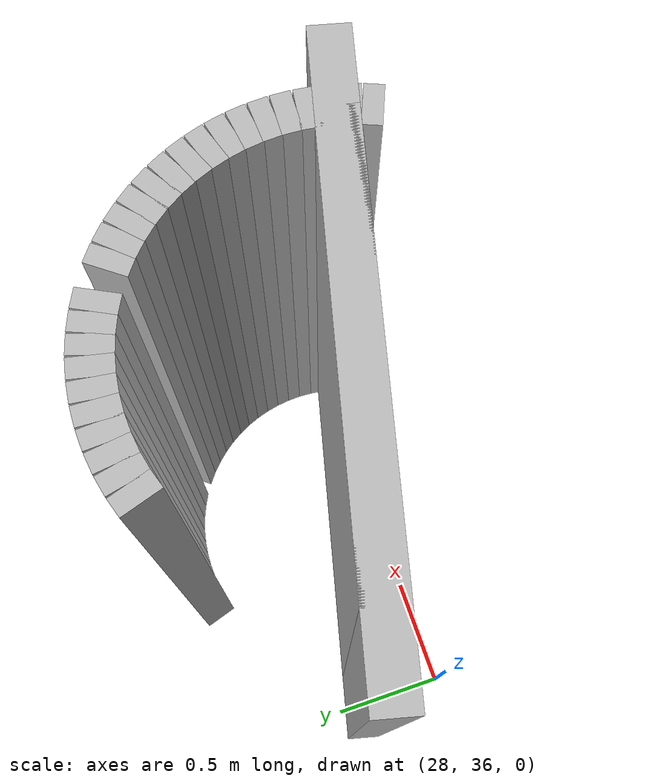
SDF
<sdf version="1.6">
 <model name="sps_0108">
  <static>1</static>
  <allow_auto_disable>0</allow_auto_disable>
  <link name="Wall17">
   <collision name="collision"><geometry><box><size>2.20059 0.15 2.5</size></box></geometry></collision>
   <visual name="visual">
    <geometry><box><size>2.20059 0.15 2.5</size></box></geometry>
    <transparency>0.0</transparency>
   </visual>
   <pose>28.9172 36.1646 1.25 0 0 -0.247824</pose>
  </link>
  <link name="Wall742">
   <collision name="collision"><geometry><box><size>1.59923 0.15 2.5</size></box></geometry></collision>
   <visual name="visual">
    <geometry><box><size>1.59923 0.15 2.5</size></box></geometry>
    <transparency>0.0</transparency>
   </visual>
   <pose>28.9172 36.1647 1.25 0 0 -0.248172</pose>
  </link>
  <link name="Wall3823">
   <collision name="collision"><geometry><box><size>0.0697909 0.15 2.5</size></box></geometry></collision>
   <visual name="visual">
    <geometry><box><size>0.0697909 0.15 2.5</size></box></geometry>
    <transparency>0.0</transparency>
   </visual>
   <pose>29.4032 36.7989 1.25 0 0 -0.653296</pose>
  </link>
  <link name="Wall3824">
   <collision name="collision"><geometry><box><size>0.0697644 0.15 2.5</size></box></geometry></collision>
   <visual name="visual">
    <geometry><box><size>0.0697644 0.15 2.5</size></box></geometry>
    <transparency>0.0</transparency>
   </visual>
   <pose>29.4566 36.7541 1.25 0 0 -0.7427</pose>
  </link>
  <link name="Wall3825">
   <collision name="collision"><geometry><box><size>0.0698994 0.15 2.5</size></box></geometry></collision>
   <visual name="visual">
    <geometry><box><size>0.0698994 0.15 2.5</size></box></geometry>
    <transparency>0.0</transparency>
   </visual>
   <pose>29.5059 36.7047 1.25 0 0 -0.829868</pose>
  </link>
  <link name="Wall3826">
   <collision name="collision"><geometry><box><size>0.0696456 0.15 2.5</size></box></geometry></collision>
   <visual name="visual">
    <geometry><box><size>0.0696456 0.15 2.5</size></box></geometry>
    <transparency>0.0</transparency>
   </visual>
   <pose>29.5507 36.6513 1.25 0 0 -0.915902</pose>
  </link>
  <link name="Wall3827">
   <collision name="collision"><geometry><box><size>0.0699275 0.15 2.5</size></box></geometry></collision>
   <visual name="visual">
    <geometry><box><size>0.0699275 0.15 2.5</size></box></geometry>
    <transparency>0.0</transparency>
   </visual>
   <pose>29.5907 36.5942 1.25 0 0 -1.00313</pose>
  </link>
  <link name="Wall3828">
   <collision name="collision"><geometry><box><size>0.0697232 0.15 2.5</size></box></geometry></collision>
   <visual name="visual">
    <geometry><box><size>0.0697232 0.15 2.5</size></box></geometry>
    <transparency>0.0</transparency>
   </visual>
   <pose>29.6256 36.5338 1.25 0 0 -1.09031</pose>
  </link>
  <link name="Wall3829">
   <collision name="collision"><geometry><box><size>0.0698203 0.15 2.5</size></box></geometry></collision>
   <visual name="visual">
    <geometry><box><size>0.0698203 0.15 2.5</size></box></geometry>
    <transparency>0.0</transparency>
   </visual>
   <pose>29.655 36.4706 1.25 0 0 -1.18071</pose>
  </link>
  <link name="Wall3830">
   <collision name="collision"><geometry><box><size>0.069821 0.15 2.5</size></box></geometry></collision>
   <visual name="visual">
    <geometry><box><size>0.069821 0.15 2.5</size></box></geometry>
    <transparency>0.0</transparency>
   </visual>
   <pose>29.6787 36.405 1.25 0 0 -1.26536</pose>
  </link>
  <link name="Wall3831">
   <collision name="collision"><geometry><box><size>0.0699092 0.15 2.5</size></box></geometry></collision>
   <visual name="visual">
    <geometry><box><size>0.0699092 0.15 2.5</size></box></geometry>
    <transparency>0.0</transparency>
   </visual>
   <pose>29.6968 36.3376 1.25 0 0 -1.35165</pose>
  </link>
  <link name="Wall3832">
   <collision name="collision"><geometry><box><size>0.0698008 0.15 2.5</size></box></geometry></collision>
   <visual name="visual">
    <geometry><box><size>0.0698008 0.15 2.5</size></box></geometry>
    <transparency>0.0</transparency>
   </visual>
   <pose>29.7089 36.2689 1.25 0 0 -1.44102</pose>
  </link>
  <link name="Wall3833">
   <collision name="collision"><geometry><box><size>0.0696443 0.15 2.5</size></box></geometry></collision>
   <visual name="visual">
    <geometry><box><size>0.0696443 0.15 2.5</size></box></geometry>
    <transparency>0.0</transparency>
   </visual>
   <pose>29.715 36.1995 1.25 0 0 -1.52784</pose>
  </link>
  <link name="Wall3834">
   <collision name="collision"><geometry><box><size>0.0698882 0.15 2.5</size></box></geometry></collision>
   <visual name="visual">
    <geometry><box><size>0.0698882 0.15 2.5</size></box></geometry>
    <transparency>0.0</transparency>
   </visual>
   <pose>29.715 36.1298 1.25 0 0 -1.6136</pose>
  </link>
  <link name="Wall3835">
   <collision name="collision"><geometry><box><size>0.0697643 0.15 2.5</size></box></geometry></collision>
   <visual name="visual">
    <geometry><box><size>0.0697643 0.15 2.5</size></box></geometry>
    <transparency>0.0</transparency>
   </visual>
   <pose>29.7089 36.0603 1.25 0 0 -1.70329</pose>
  </link>
  <link name="Wall3836">
   <collision name="collision"><geometry><box><size>0.0698697 0.15 2.5</size></box></geometry></collision>
   <visual name="visual">
    <geometry><box><size>0.0698697 0.15 2.5</size></box></geometry>
    <transparency>0.0</transparency>
   </visual>
   <pose>29.6967 35.9916 1.25 0 0 -1.78738</pose>
  </link>
  <link name="Wall3837">
   <collision name="collision"><geometry><box><size>0.0697019 0.15 2.5</size></box></geometry></collision>
   <visual name="visual">
    <geometry><box><size>0.0697019 0.15 2.5</size></box></geometry>
    <transparency>0.0</transparency>
   </visual>
   <pose>29.6786 35.9243 1.25 0 0 -1.87953</pose>
  </link>
  <link name="Wall3838">
   <collision name="collision"><geometry><box><size>0.0696743 0.15 2.5</size></box></geometry></collision>
   <visual name="visual">
    <geometry><box><size>0.0696743 0.15 2.5</size></box></geometry>
    <transparency>0.0</transparency>
   </visual>
   <pose>29.6547 35.8589 1.25 0 0 -1.96269</pose>
  </link>
  <link name="Wall3884">
   <collision name="collision"><geometry><box><size>0.0695915 0.15 2.5</size></box></geometry></collision>
   <visual name="visual">
    <geometry><box><size>0.0695915 0.15 2.5</size></box></geometry>
    <transparency>0.0</transparency>
   </visual>
   <pose>28.6762 36.9273 1.25 0 -0 0.303722</pose>
  </link>
  <link name="Wall3885">
   <collision name="collision"><geometry><box><size>0.0699092 0.15 2.5</size></box></geometry></collision>
   <visual name="visual">
    <geometry><box><size>0.0699092 0.15 2.5</size></box></geometry>
    <transparency>0.0</transparency>
   </visual>
   <pose>28.7436 36.9453 1.25 0 -0 0.219142</pose>
  </link>
  <link name="Wall3886">
   <collision name="collision"><geometry><box><size>0.069793 0.15 2.5</size></box></geometry></collision>
   <visual name="visual">
    <geometry><box><size>0.069793 0.15 2.5</size></box></geometry>
    <transparency>0.0</transparency>
   </visual>
   <pose>28.8123 36.9574 1.25 0 -0 0.128911</pose>
  </link>
  <link name="Wall3887">
   <collision name="collision"><geometry><box><size>0.0698299 0.15 2.5</size></box></geometry></collision>
   <visual name="visual">
    <geometry><box><size>0.0698299 0.15 2.5</size></box></geometry>
    <transparency>0.0</transparency>
   </visual>
   <pose>28.8818 36.9634 1.25 0 -0 0.0437167</pose>
  </link>
  <link name="Wall3888">
   <collision name="collision"><geometry><box><size>0.069647 0.15 2.5</size></box></geometry></collision>
   <visual name="visual">
    <geometry><box><size>0.069647 0.15 2.5</size></box></geometry>
    <transparency>0.0</transparency>
   </visual>
   <pose>28.9514 36.9634 1.25 0 0 -0.0438316</pose>
  </link>
  <link name="Wall3889">
   <collision name="collision"><geometry><box><size>0.0698167 0.15 2.5</size></box></geometry></collision>
   <visual name="visual">
    <geometry><box><size>0.0698167 0.15 2.5</size></box></geometry>
    <transparency>0.0</transparency>
   </visual>
   <pose>29.0208 36.9573 1.25 0 0 -0.131512</pose>
  </link>
  <link name="Wall3890">
   <collision name="collision"><geometry><box><size>0.0698697 0.15 2.5</size></box></geometry></collision>
   <visual name="visual">
    <geometry><box><size>0.0698697 0.15 2.5</size></box></geometry>
    <transparency>0.0</transparency>
   </visual>
   <pose>29.0896 36.9452 1.25 0 0 -0.216584</pose>
  </link>
  <link name="Wall3891">
   <collision name="collision"><geometry><box><size>0.069821 0.15 2.5</size></box></geometry></collision>
   <visual name="visual">
    <geometry><box><size>0.069821 0.15 2.5</size></box></geometry>
    <transparency>0.0</transparency>
   </visual>
   <pose>29.157 36.9272 1.25 0 0 -0.30544</pose>
  </link>
  <link name="Wall3892">
   <collision name="collision"><geometry><box><size>0.0697444 0.15 2.5</size></box></geometry></collision>
   <visual name="visual">
    <geometry><box><size>0.0697444 0.15 2.5</size></box></geometry>
    <transparency>0.0</transparency>
   </visual>
   <pose>29.2225 36.9033 1.25 0 0 -0.39432</pose>
  </link>
  <link name="Wall3893">
   <collision name="collision"><geometry><box><size>0.0698857 0.15 2.5</size></box></geometry></collision>
   <visual name="visual">
    <geometry><box><size>0.0698857 0.15 2.5</size></box></geometry>
    <transparency>0.0</transparency>
   </visual>
   <pose>29.2857 36.8738 1.25 0 0 -0.479271</pose>
  </link>
  <link name="Wall4636">
   <collision name="collision"><geometry><box><size>1.59889 0.15 2.5</size></box></geometry></collision>
   <visual name="visual">
    <geometry><box><size>1.59889 0.15 2.5</size></box></geometry>
    <transparency>0.0</transparency>
   </visual>
   <pose>28.9175 36.1649 1.25 0 0 -0.247951</pose>
  </link>
 </model>
</sdf>
